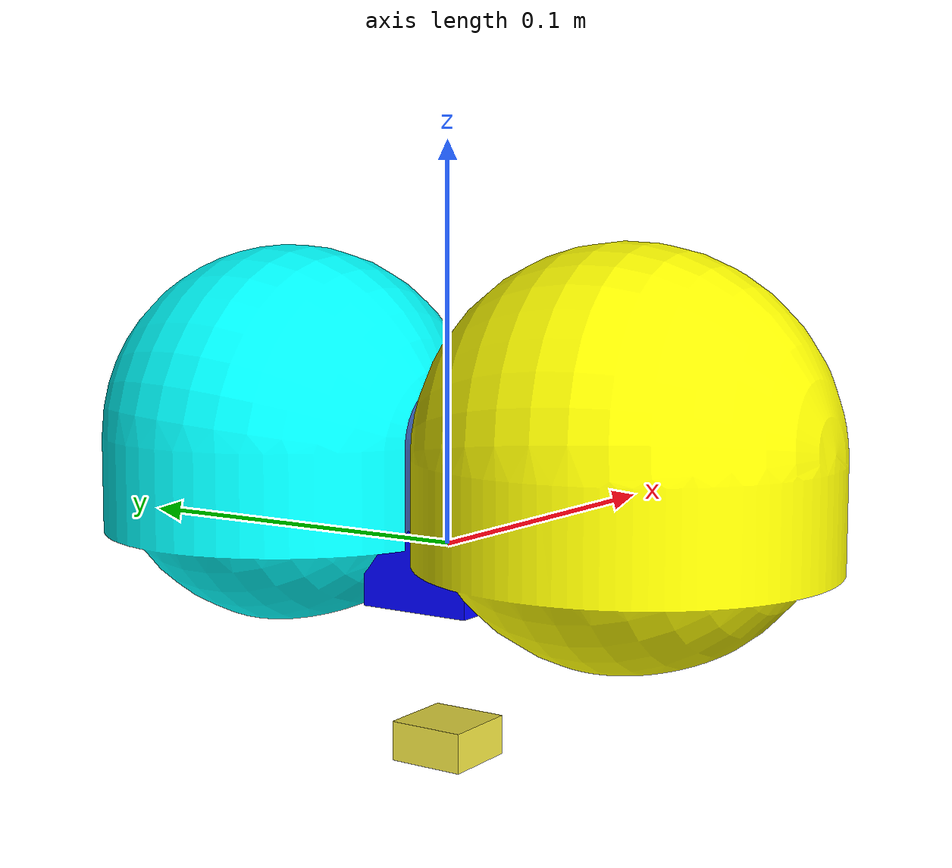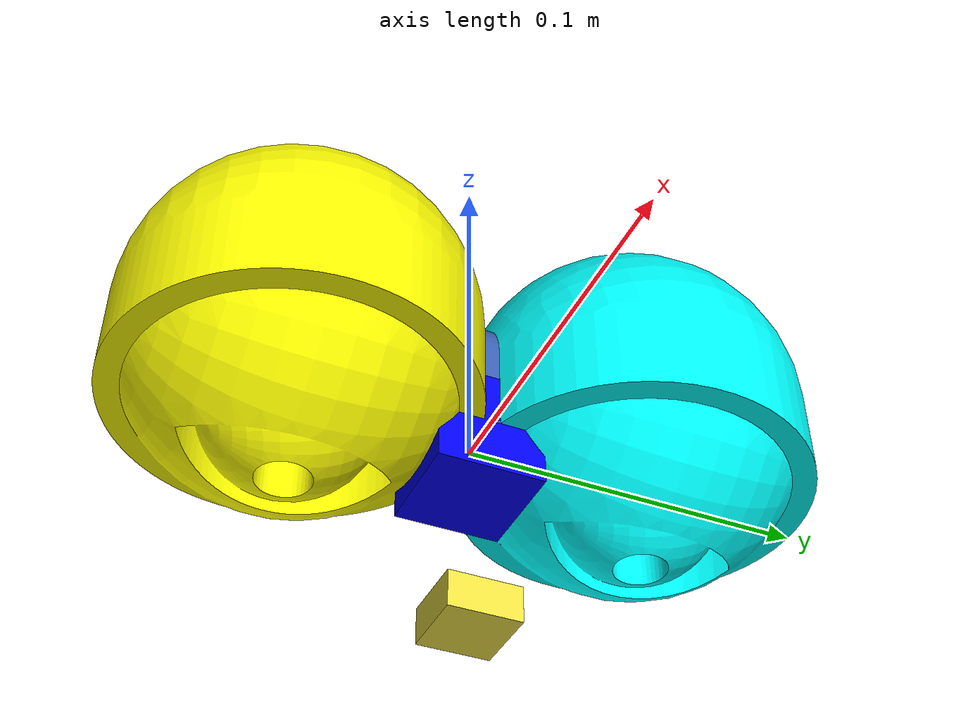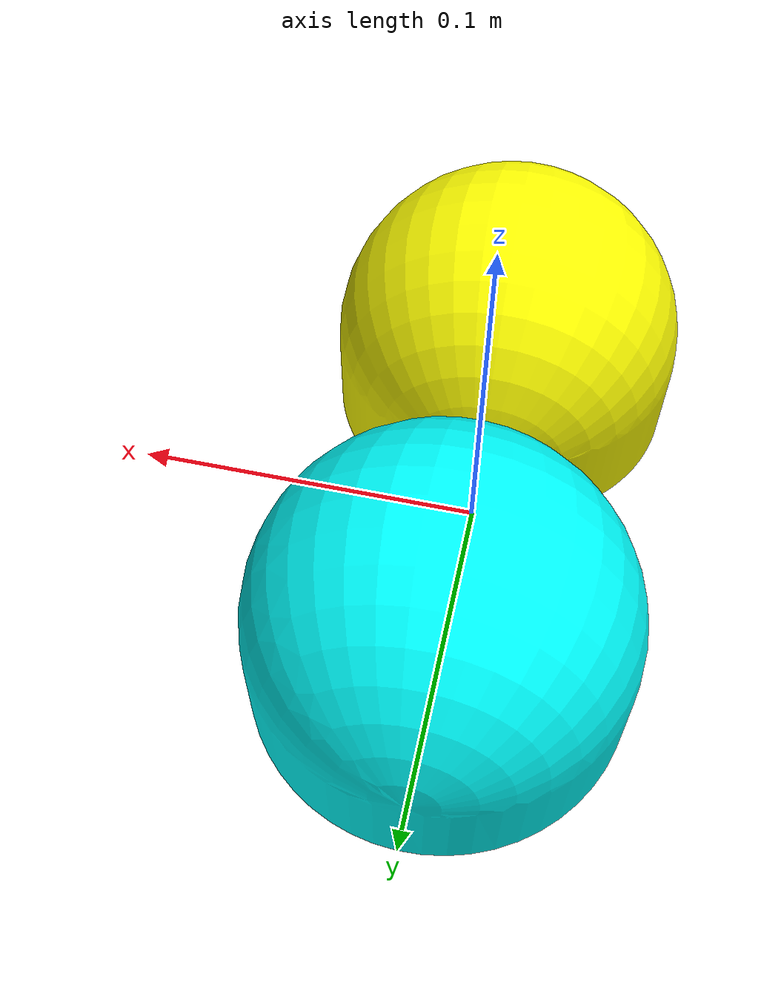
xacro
<?xml version='1.0'?>
<robot name="drone2" xmlns:xacro="http://www.ros.org/wiki/xacro">

  <!-- ===== Properties ===== -->
  <xacro:property name="camera_width" value="0.02"/>
  <xacro:property name="camera_length" value="0.02"/>
  <xacro:property name="camera_height" value="0.01"/>
  <xacro:property name="camera_mass" value="0.01"/>

  <xacro:property name="depth_cam_mass" value="0.01"/>
  <xacro:property name="depth_cam_size" value="0.03"/>

  <xacro:property name="chassis_mass" value="19"/>
  <xacro:property name="chassis_collision_x" value="0.15"/>
  <xacro:property name="chassis_collision_y" value="0.15"/>
  <xacro:property name="chassis_collision_z_top" value="0.05"/>
  <xacro:property name="chassis_collision_z_bottom" value="0.05"/>

  <xacro:include filename="$(find drone)/urdf/macros.xacro"/>
  <xacro:include filename="$(find drone)/urdf/materials.xacro"/>

  <!--                                CHASSIS                                     -->
  <link name="chassis">
    <xacro:box_inertial name="chassis" m="${chassis_mass}"
                        x="${chassis_collision_x}"
                        y="${chassis_collision_y}"
                        z="${chassis_collision_z_top + chassis_collision_z_bottom}"/>
    <collision name="chassis_collision">
      <origin xyz="0 0 ${chassis_collision_z_top - (chassis_collision_z_top + chassis_collision_z_bottom)/2}" rpy="0 0 0"/>
      <geometry>
        <box size="${chassis_collision_x} ${chassis_collision_y} ${chassis_collision_z_top + chassis_collision_z_bottom}"/>
      </geometry>
    </collision>

    <visual name="chassis_visual">
      <origin xyz="0 0 0" rpy="0 0 0"/>
      <geometry>
        <mesh filename="file:///home/fizzer/ENPH353_Competition/src/drone/meshes/middle.dae"
              scale="1 1 1"/>
      </geometry>
    </visual>
  </link>

  <!--                         FRONT + BACK LINKS                                 -->
  <link name="back_link">
    <xacro:sphere_inertial name="back_link" m="0.5" r="0.05"/>
    <visual name="back_visual">
      <geometry>
        <mesh filename="file:///home/fizzer/ENPH353_Competition/src/drone/meshes/back.dae"/>
      </geometry>
    </visual>
  </link>

  <link name="front_link">
    <xacro:sphere_inertial name="front_link" m="0.5" r="0.05"/>
    <visual name="front_visual">
      <geometry>
        <mesh filename="file:///home/fizzer/ENPH353_Competition/src/drone/meshes/front.dae"/>
      </geometry>
    </visual>
  </link>

  <joint name="F_joint" type="fixed">
    <parent link="chassis"/>
    <child link="front_link"/>
    <origin xyz="0 0 0" rpy="0 0 0"/>
  </joint>

  <joint name="R_joint" type="fixed">
    <parent link="chassis"/>
    <child link="back_link"/>
    <origin xyz="0 0 0" rpy="0 0 0"/>
  </joint>

  <!--                        CAMERA (visual only, bottom)                         -->
  <link name="camera_link">
    <xacro:box_inertial name="camera_link" m="${camera_mass}"
                        x="${camera_width}" y="${camera_length}" z="${camera_height}"/>
    <visual name="camera_link_visual">
      <origin xyz="0 0 -0.05" rpy="0 0 0"/>
      <geometry>
        <box size="${camera_length} ${camera_width} ${camera_height}"/>
      </geometry>
    </visual>
  </link>

  <joint name="camera_joint" type="fixed">
    <parent link="chassis"/>
    <child link="camera_link"/>
    <origin xyz="0 0 0" rpy="0 0 0"/>
  </joint>

  <gazebo reference="camera_link">
  <sensor type="camera" name="rgb_camera_sensor">
    <always_on>true</always_on>
    <update_rate>30</update_rate>

    <camera>
      <horizontal_fov>1.75</horizontal_fov>
      <image>
        <width>2160</width>
        <height>2160</height>
        <format>R8G8B8</format>
        <noise type="gaussian">
          <mean>0.0</mean>
          <stddev>0.007</stddev>
        </noise>
      </image>
      <clip>
        <near>0.075</near>
        <far>50.0</far>
      </clip>
    </camera>

    <plugin name="gazebo_ros_camera" filename="libgazebo_ros_camera.so">
      <robotNamespace>/D2</robotNamespace>
      <cameraName>rgb_camera</cameraName>
      <frameName>rgb_camera_link</frameName>
      <updateRate>30</updateRate>
    </plugin>
  </sensor>
</gazebo>

  <!--                                  IMU                                       -->
  <link name="imu_link">
    <inertial>
      <mass value="0.01"/>
      <origin xyz="0 0 0"/>
      <inertia ixx="1e-5" iyy="1e-5" izz="1e-5"/>
    </inertial>
    <visual>
      <geometry><sphere radius="0.005"/></geometry>
    </visual>
  </link>

  <joint name="imu_joint" type="fixed">
    <parent link="chassis"/>
    <child link="imu_link"/>
    <origin xyz="0 0 0"/>
  </joint>

  <gazebo reference="imu_link">
    <sensor type="imu" name="imu_sensor">
      <always_on>true</always_on>
      <plugin name="imu_bridge" filename="libgazebo_ros_imu_sensor.so">
        <topicName>imu/data</topicName>
        <frameName>imu_link</frameName>
        <updateRateHZ>250</updateRateHZ>
      </plugin>
    </sensor>
  </gazebo>

  <!--  DEPTH CAMERA LINK    -->
  <link name="depth_camera_link">
    <inertial>
      <mass value="0.01"/>
      <origin xyz="0 0 0"/>
      <inertia ixx="1e-6" iyy="1e-6" izz="1e-6"/>
    </inertial>

    <visual name="depth_cam_visual">
      <geometry>
        <box size="0.03 0.03 0.03"/>
      </geometry>
      <origin xyz="0 0 0" rpy="0 0 0"/>
      <material><color rgba="0 0 1 1"/></material>
    </visual>
  </link>

  <!-- Mount it under the chassis -->
  <joint name="depth_camera_mount" type="fixed">
    <parent link="chassis"/>
    <child link="depth_camera_link"/>
    <!-- Point DOWNWARD: rpy = -90deg roll -->
    <origin xyz="0 0 0" rpy="0 1.5708 0"/>
  </joint>

  <!--  SENSOR ON THE LINK   -->
  <gazebo reference="depth_camera_link">
    <sensor type="depth" name="depth_camera_sensor">
      <always_on>true</always_on>
      <update_rate>150</update_rate>

      <camera>
        <horizontal_fov>0.3</horizontal_fov>
        <image>
          <width>300</width>
          <height>150</height>
          <format>L8</format>
          <noise type="gaussian">
            <mean>0.0</mean>
            <stddev>0.007</stddev>
          </noise>
        </image>
        <clip>
          <near>0.05</near>
          <far>40.0</far>
        </clip>
      </camera>

      <plugin name="gazebo_ros_depth_camera" filename="libgazebo_ros_depth_camera.so">
        <camera_name>D2/depth_camera</camera_name>
        <frame_name>depth_camera_link</frame_name>
        <update_rate>120</update_rate>
        <robotNamespace>/D2</robotNamespace>
      </plugin>

    </sensor>
  </gazebo>

  <!--                           DRONE CONTROL PLUGIN                             -->
  <gazebo>
    <plugin name="drone_control" filename="libSimpleBodyDroneControlPlugin.so">
      <namespace>D2</namespace>
    </plugin>
    <enable_wind>true</enable_wind>
  </gazebo>

</robot>

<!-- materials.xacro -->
<robot xmlns:xacro="http://www.ros.org/wiki/xacro">
	<material name="black">
	  <color rgba="0.0 0.0 0.0 1.0"/>
	</material>

	<material name="blue">
	  <color rgba="0.0 0.0 0.1 1.0"/>
	</material>

	<material name="green">
	  <color rgba="0.0 0.8 0.0 1.0"/>
	</material>

	<material name="grey">
	  <color rgba="0.2 0.2 0.2 1.0"/>
	</material>

	<material name="orange">
	  <color rgba="${255/255} ${108/255} ${10/255} 1.0"/>
	</material>

	<material name="brown">
	  <color rgba="${222/255} ${207/255} ${195/255} 1.0"/>
	</material>

	<material name="red">
	  <color rgba="0.1 0.0 0.0 1.0"/>
	</material>

	<material name="white">
	  <color rgba="1.0 1.0 1.0 1.0"/>
	</material>

	<material name="yellow">
	  <color rgba="1.0 1.0 0 1.0"/>
	</material>

</robot>
